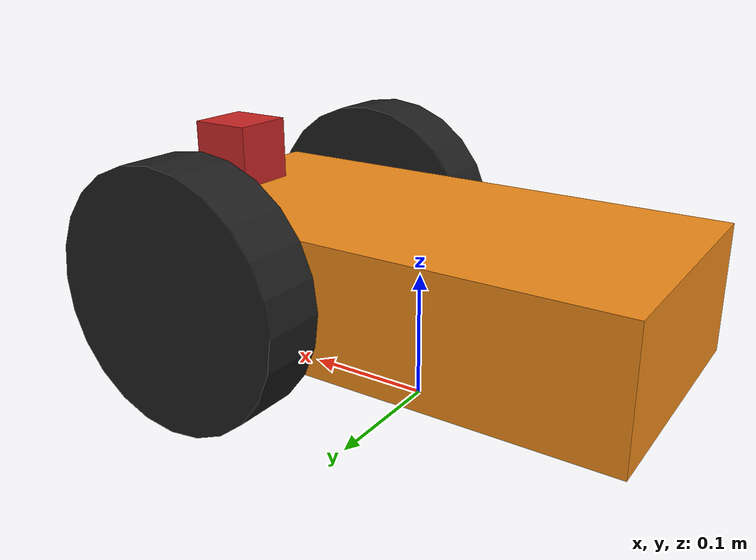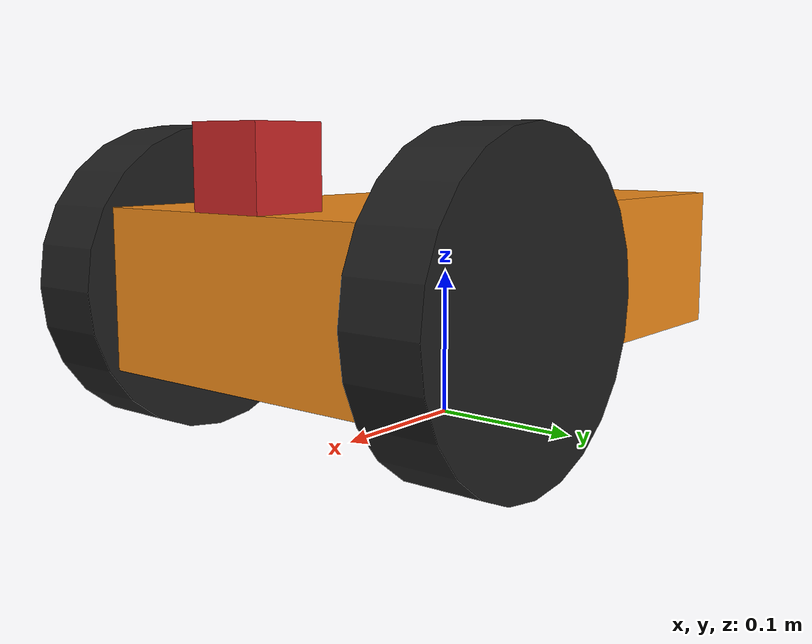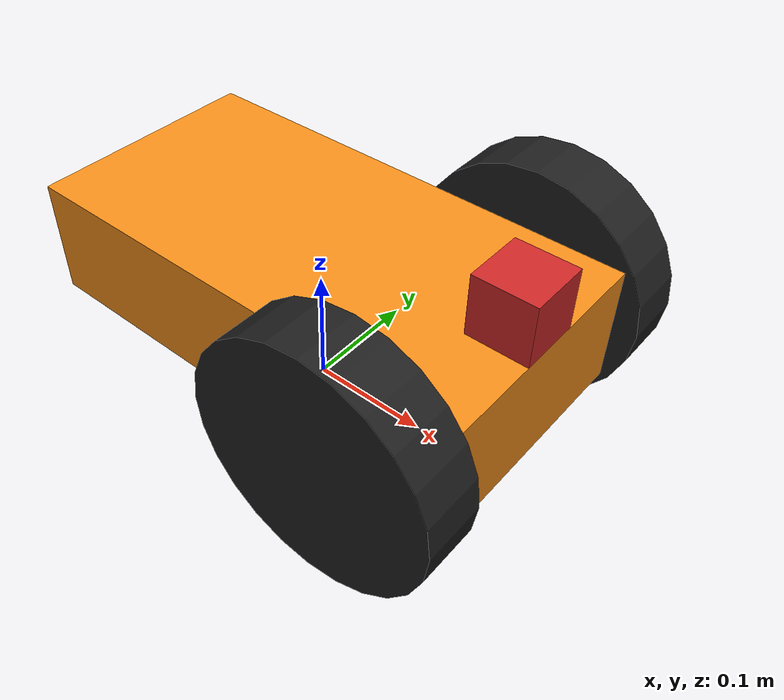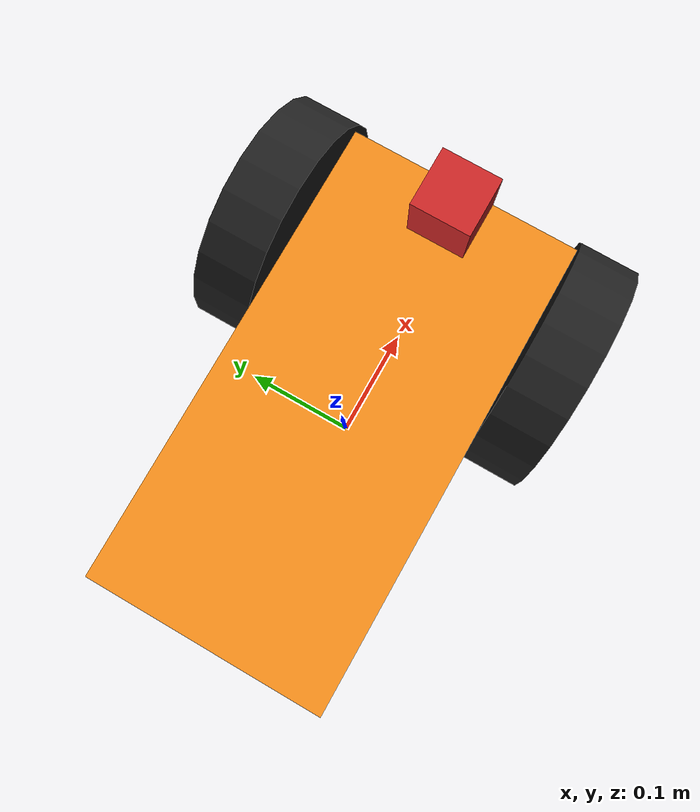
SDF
<?xml version="1.0" ?>
<!-- |    This document was autogenerated by xacro from model.sdf.xacro                | -->
<!-- |    EDITING THIS FILE BY HAND IS NOT RECOMMENDED                                 | -->
<sdf version="1.4">
  <model name="mobot" xmlns:xacro="http://www.ros.org/wiki/xacro">
    <static>false</static>
    <link name="chassis">
      <pose>0 0 0.1 0 0 0</pose>
      <collision name="collision">
        <geometry>
          <box>
            <size>0.4 0.2 0.1</size>
          </box>
        </geometry>
      </collision>
      <visual name="visual">
        <geometry>
          <box>
            <size>0.4 0.2 0.1</size>
          </box>
        </geometry>
        <material>
          <script>
            <name>Gazebo/Orange</name>
            <uri>__default__</uri>
          </script>
        </material>
      </visual>
      <inertial>
        <mass>50</mass>
        <inertia>
          <ixx>0.208333333333</ixx>
          <iyy>0.708333333333</iyy>
          <izz>0.833333333333</izz>
          <ixy>0</ixy>
          <ixz>0</ixz>
          <iyz>0</iyz>
        </inertia>
      </inertial>
      <collision name="caster_collision">
        <pose>-0.133333333333 0 -0.05 0 0 0</pose>
        <geometry>
          <sphere>
            <radius>0.05</radius>
          </sphere>
        </geometry>
        <surface>
          <friction>
            <ode>
              <mu>0</mu>
              <mu2>0</mu2>
              <slip1>1.0</slip1>
              <slip2>1.0</slip2>
            </ode>
          </friction>
        </surface>
      </collision>
      <visual name="caster_visual">
        <pose>-0.133333333333 0 -0.05 0 0 0</pose>
        <geometry>
          <sphere>
            <radius>0.05</radius>
          </sphere>
        </geometry>
        <material>
          <script>
            <name>Gazebo/Red</name>
            <uri>__default__</uri>
          </script>
        </material>
      </visual>
    </link>
    <joint name="camera_joint" type="revolute">
      <child>camera_link</child>
      <parent>chassis</parent>
      <axis>
        <xyz>0 0 1</xyz>
        <limit>
          <upper>0</upper>
          <lower>0</lower>
        </limit>
      </axis>
    </joint>
    <link name="camera_link">
      <pose>0.175 0 0.175 0 0 0</pose>
      <inertial>
        <mass>0.1</mass>
        <inertia>
          <ixx>4.16666666667e-05</ixx>
          <iyy>4.16666666667e-05</iyy>
          <izz>4.16666666667e-05</izz>
          <ixy>0</ixy>
          <ixz>0</ixz>
          <iyz>0</iyz>
        </inertia>
      </inertial>
      <collision name="camera_collision">
        <geometry>
          <box>
            <size>0.05 0.05 0.05</size>
          </box>
        </geometry>
      </collision>
      <visual name="camera_visual">
        <geometry>
          <box>
            <size>0.05 0.05 0.05</size>
          </box>
        </geometry>
        <material>
          <script>
            <name>Gazebo/Red</name>
            <uri>__default__</uri>
          </script>
        </material>
      </visual>
      <sensor name="camera1" type="camera">
        <update_rate>30</update_rate>
        <camera name="head">
          <horizontal_fov>1.39626</horizontal_fov>
          <image>
            <width>800</width>
            <height>800</height>
            <format>R8G8B8</format>
          </image>
          <clip>
            <near>0.02</near>
            <far>300</far>
          </clip>
          <noise>
            <type>gaussian</type>
            <mean>0</mean>
            <stddev>0.007</stddev>
          </noise>
        </camera>
        <plugin filename="libgazebo_ros_camera.so" name="camera_controller">
          <alwaysOn>true</alwaysOn>
          <updateRate>0.0</updateRate>
          <cameraName>mobot/camera1</cameraName>
          <imageTopicName>image_raw</imageTopicName>
          <cameraInfoTopicName>camera_info</cameraInfoTopicName>
          <frameName>camera_link</frameName>
          <hackBaseline>0.07</hackBaseline>
          <distortionK1>0.0</distortionK1>
          <distortionK2>0.0</distortionK2>
          <distortionK3>0.0</distortionK3>
          <distortionT1>0.0</distortionT1>
          <distortionT2>0.0</distortionT2>
        </plugin>
        <pose>0.175 0 0.175 0 -0 0</pose>
      </sensor>
    </link>
    <link name="left_wheel">
      <pose>0.12 0.125 0.1 0 1.57079632679 1.57079632679</pose>
      <collision name="left_wheel_collision">
        <geometry>
          <cylinder>
            <radius>0.1</radius>
            <length>0.05</length>
          </cylinder>
        </geometry>
        <surface>
          <friction>
            <ode>
              <mu>1.0</mu>
              <mu2>1.0</mu2>
              <slip1>0.0</slip1>
              <slip2>0.0</slip2>
            </ode>
          </friction>
        </surface>
      </collision>
      <visual name="left_wheel_visual">
        <geometry>
          <cylinder>
            <radius>0.1</radius>
            <length>0.05</length>
          </cylinder>
        </geometry>
        <material>
          <script>
            <name>Gazebo/Black</name>
            <uri>__default__</uri>
          </script>
        </material>
      </visual>
      <inertial>
        <mass>5</mass>
        <inertia>
          <ixx>0.0135416666667</ixx>
          <iyy>0.0135416666667</iyy>
          <izz>0.025</izz>
          <ixy>0</ixy>
          <ixz>0</ixz>
          <iyz>0</iyz>
        </inertia>
      </inertial>
    </link>
    <joint name="left_wheel_hinge" type="revolute">
      <parent>chassis</parent>
      <child>left_wheel</child>
      <pose>0 0 0.025 0 0 0</pose>
      <axis>
        <xyz>0 1 0</xyz>
        <dynamics>
          <damping>5</damping>
        </dynamics>
        <limit>
          <effort>100</effort>
          <velocity>100</velocity>
        </limit>
      </axis>
    </joint>
    <link name="right_wheel">
      <pose>0.12 -0.125 0.1 0 1.57079632679 1.57079632679</pose>
      <collision name="right_wheel_collision">
        <geometry>
          <cylinder>
            <radius>0.1</radius>
            <length>0.05</length>
          </cylinder>
        </geometry>
        <surface>
          <friction>
            <ode>
              <mu>1.0</mu>
              <mu2>1.0</mu2>
              <slip1>0.0</slip1>
              <slip2>0.0</slip2>
            </ode>
          </friction>
        </surface>
      </collision>
      <visual name="right_wheel_visual">
        <geometry>
          <cylinder>
            <radius>0.1</radius>
            <length>0.05</length>
          </cylinder>
        </geometry>
        <material>
          <script>
            <name>Gazebo/Black</name>
            <uri>__default__</uri>
          </script>
        </material>
      </visual>
      <inertial>
        <mass>5</mass>
        <inertia>
          <ixx>0.0135416666667</ixx>
          <iyy>0.0135416666667</iyy>
          <izz>0.025</izz>
          <ixy>0</ixy>
          <ixz>0</ixz>
          <iyz>0</iyz>
        </inertia>
      </inertial>
    </link>
    <joint name="right_wheel_hinge" type="revolute">
      <parent>chassis</parent>
      <child>right_wheel</child>
      <pose>0 0 0.025 0 0 0</pose>
      <axis>
        <xyz>0 1 0</xyz>
        <dynamics>
          <damping>5</damping>
        </dynamics>
        <limit>
          <effort>100</effort>
          <velocity>100</velocity>
        </limit>
      </axis>
    </joint>
    <plugin filename="libgazebo_ros_diff_drive.so" name="differential_drive_controller">
      <alwaysOn>true</alwaysOn>
      <updateRate>100</updateRate>
      <leftJoint>left_wheel_hinge</leftJoint>
      <rightJoint>right_wheel_hinge</rightJoint>
      <wheelSeparation>0.25</wheelSeparation>
      <wheelDiameter>0.2</wheelDiameter>
      <torque>20</torque>
      <commandTopic>mobot/cmd_vel</commandTopic>
      <odometryTopic>mobot/odom_diffdrive</odometryTopic>
      <odometryFrame>odom</odometryFrame>
      <robotBaseFrame>chassis</robotBaseFrame>
    </plugin>
  </model>
</sdf>
